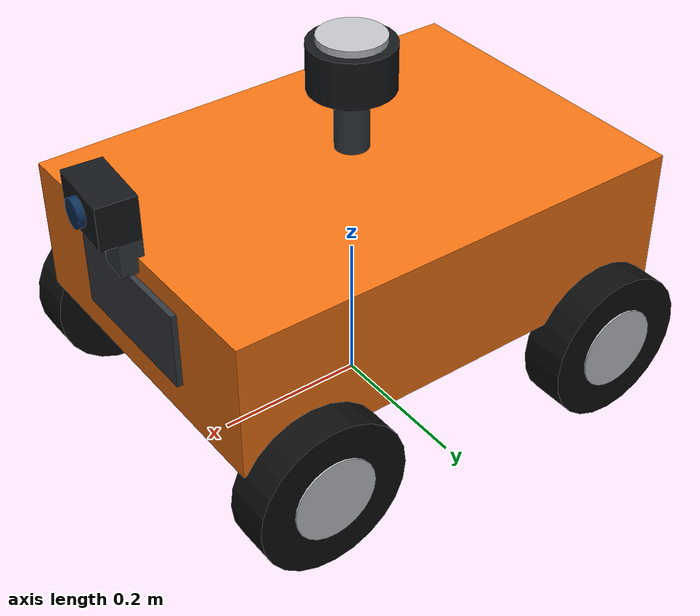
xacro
<?xml version="1.0"?>
<robot name="guardrail_bot" xmlns:xacro="http://www.ros.org/wiki/xacro">

  <xacro:arg name="camera_pitch" default="0.0"/>
  <xacro:arg name="camera_yaw" default="-0.08"/>

  <xacro:include filename="common.xacro"/>
  <xacro:include filename="chassis.xacro"/>
  <xacro:include filename="wheels.xacro"/>
  <xacro:include filename="sensors.xacro"/>
  <xacro:include filename="gazebo.xacro"/>

</robot>

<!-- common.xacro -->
<robot xmlns:xacro="http://www.ros.org/wiki/xacro">

  <!-- ============================================================
       Geometric and dynamic parameters (SI units: m, kg, s, rad)
       ============================================================ -->
  <xacro:property name="wheel_radius"     value="0.10"/>
  <xacro:property name="wheel_width"      value="0.06"/>
  <xacro:property name="wheel_mass"       value="0.70"/>

  <!-- Wheel centres relative to base_link -->
  <xacro:property name="wheel_x"          value="0.22"/>
  <xacro:property name="wheel_y"          value="0.235"/>
  <xacro:property name="wheel_z"          value="-0.14"/>

  <!-- Track width used by the diff-drive plugin (left/right wheel centres) -->
  <xacro:property name="wheel_separation" value="${2.0 * wheel_y}"/>

  <!-- Chassis -->
  <xacro:property name="chassis_length"   value="0.62"/>
  <xacro:property name="chassis_width"    value="0.44"/>
  <xacro:property name="chassis_height"   value="0.18"/>
  <xacro:property name="chassis_mass"     value="8.0"/>
  <xacro:property name="base_link_z"      value="0.24"/>

  <!-- Sensor mounting (relative to base_link) -->
  <xacro:property name="camera_x"         value="0.335"/>
  <xacro:property name="camera_y"         value="0.0"/>
  <xacro:property name="camera_z"         value="0.16"/>

  <xacro:property name="lidar_x"          value="0.0"/>
  <xacro:property name="lidar_y"          value="0.0"/>
  <xacro:property name="lidar_z"          value="0.22"/>

  <xacro:macro name="box_inertial" params="mass x y z">
    <inertial>
      <origin xyz="0 0 0" rpy="0 0 0"/>
      <mass value="${mass}"/>
      <inertia
        ixx="${mass * (y*y + z*z) / 12.0}" ixy="0.0" ixz="0.0"
        iyy="${mass * (x*x + z*z) / 12.0}" iyz="0.0"
        izz="${mass * (x*x + y*y) / 12.0}"/>
    </inertial>
  </xacro:macro>

  <xacro:macro name="cylinder_inertial" params="mass radius length">
    <inertial>
      <origin xyz="0 0 0" rpy="0 0 0"/>
      <mass value="${mass}"/>
      <inertia
        ixx="${mass * (3.0*radius*radius + length*length) / 12.0}" ixy="0.0" ixz="0.0"
        iyy="${mass * (3.0*radius*radius + length*length) / 12.0}" iyz="0.0"
        izz="${mass * radius * radius / 2.0}"/>
    </inertial>
  </xacro:macro>

</robot>

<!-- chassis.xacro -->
<robot xmlns:xacro="http://www.ros.org/wiki/xacro">

  <!-- base_footprint is the ground-projection frame used by odometry.
       It is massless; Gazebo will lump the fixed joint into base_link. -->
  <link name="base_footprint"/>

  <joint name="base_joint" type="fixed">
    <parent link="base_footprint"/>
    <child link="base_link"/>
    <origin xyz="0 0 ${base_link_z}" rpy="0 0 0"/>
  </joint>

  <link name="base_link">
    <visual name="chassis_visual">
      <origin xyz="0 0 0" rpy="0 0 0"/>
      <geometry>
        <box size="${chassis_length} ${chassis_width} ${chassis_height}"/>
      </geometry>
      <material name="body_orange">
        <color rgba="0.95 0.45 0.08 1.0"/>
      </material>
    </visual>

    <!-- Lower skirt: makes the robot look like a road-inspection platform. -->
    <visual name="skirt_visual">
      <origin xyz="0 0 -0.09" rpy="0 0 0"/>
      <geometry>
        <box size="0.58 0.40 0.04"/>
      </geometry>
      <material name="body_dark">
        <color rgba="0.11 0.12 0.13 1.0"/>
      </material>
    </visual>

    <!-- Front camera housing and rear equipment box are only decorative. -->
    <visual name="front_panel_visual">
      <origin xyz="0.305 0 0.01" rpy="0 0 0"/>
      <geometry>
        <box size="0.025 0.20 0.10"/>
      </geometry>
      <material name="panel_grey">
        <color rgba="0.20 0.22 0.24 1.0"/>
      </material>
    </visual>

    <collision name="chassis_collision">
      <origin xyz="0 0 0" rpy="0 0 0"/>
      <geometry>
        <box size="${chassis_length} ${chassis_width} ${chassis_height}"/>
      </geometry>
    </collision>

    <xacro:box_inertial mass="${chassis_mass}"
                        x="${chassis_length}"
                        y="${chassis_width}"
                        z="${chassis_height}"/>
  </link>

  <!-- A fixed frame at the front face, convenient for future sensors. -->
  <link name="front_frame"/>
  <joint name="front_frame_joint" type="fixed">
    <parent link="base_link"/>
    <child link="front_frame"/>
    <origin xyz="0.31 0 0.02" rpy="0 0 0"/>
  </joint>

</robot>

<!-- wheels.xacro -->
<robot xmlns:xacro="http://www.ros.org/wiki/xacro">

  <!-- A wheel is a cylinder whose axis is the URDF y axis.
       The cylinder primitive is defined about z, hence rpy="${pi/2} 0 0". -->
  <xacro:macro name="wheel" params="name x y">
    <link name="${name}_wheel_link">
      <visual name="${name}_tyre_visual">
        <origin xyz="0 0 0" rpy="${pi/2} 0 0"/>
        <geometry>
          <cylinder radius="${wheel_radius}" length="${wheel_width}"/>
        </geometry>
        <material name="tyre_black">
          <color rgba="0.05 0.05 0.05 1.0"/>
        </material>
      </visual>

      <!-- A light-coloured rim makes wheel rotation visible in Gazebo. -->
      <visual name="${name}_rim_visual">
        <origin xyz="0 0 0" rpy="${pi/2} 0 0"/>
        <geometry>
          <cylinder radius="${0.055}" length="${wheel_width + 0.004}"/>
        </geometry>
        <material name="rim_silver">
          <color rgba="0.75 0.76 0.78 1.0"/>
        </material>
      </visual>

      <collision name="${name}_tyre_collision">
        <origin xyz="0 0 0" rpy="${pi/2} 0 0"/>
        <geometry>
          <cylinder radius="${wheel_radius}" length="${wheel_width}"/>
        </geometry>
      </collision>

      <xacro:cylinder_inertial mass="${wheel_mass}"
                               radius="${wheel_radius}"
                               length="${wheel_width}"/>
    </link>

    <joint name="${name}_wheel_joint" type="continuous">
      <parent link="base_link"/>
      <child link="${name}_wheel_link"/>
      <origin xyz="${x} ${y} ${wheel_z}" rpy="0 0 0"/>
      <axis xyz="0 1 0"/>
      <limit effort="20.0" velocity="30.0"/>
      <dynamics damping="0.05" friction="0.0"/>
    </joint>

    <!-- High friction is needed for skid-steer / four-wheel differential drive.
         The values are Gazebo URDF extensions and are converted to SDF surface
         parameters when the robot is spawned. -->
    <gazebo reference="${name}_wheel_link">
      <mu1>1.2</mu1>
      <mu2>1.2</mu2>
      <kp>1000000.0</kp>
      <kd>100.0</kd>
    </gazebo>
  </xacro:macro>

  <xacro:wheel name="front_left"  x="${wheel_x}"  y="${wheel_y}"/>
  <xacro:wheel name="rear_left"   x="${-wheel_x}" y="${wheel_y}"/>
  <xacro:wheel name="front_right" x="${wheel_x}"  y="${-wheel_y}"/>
  <xacro:wheel name="rear_right"  x="${-wheel_x}" y="${-wheel_y}"/>

</robot>

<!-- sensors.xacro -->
<robot xmlns:xacro="http://www.ros.org/wiki/xacro">

  <!-- ==================== Camera ==================== -->
  <link name="camera_link">
    <visual name="camera_body_visual">
      <origin xyz="0 0 0" rpy="0 0 0"/>
      <geometry>
        <box size="0.050 0.090 0.055"/>
      </geometry>
      <material name="sensor_dark">
        <color rgba="0.08 0.09 0.10 1.0"/>
      </material>
    </visual>

    <visual name="camera_lens_visual">
      <origin xyz="0.028 0 0" rpy="0 1.5708 0"/>
      <geometry>
        <cylinder radius="0.018" length="0.012"/>
      </geometry>
      <material name="lens_blue">
        <color rgba="0.05 0.18 0.35 1.0"/>
      </material>
    </visual>

    <!-- Small bracket down to the chassis front face. -->
    <visual name="camera_bracket_visual">
      <origin xyz="-0.020 0 -0.045" rpy="0 0 0"/>
      <geometry>
        <box size="0.030 0.040 0.090"/>
      </geometry>
      <material name="panel_grey">
        <color rgba="0.20 0.22 0.24 1.0"/>
      </material>
    </visual>

    <collision name="camera_collision">
      <origin xyz="0 0 0" rpy="0 0 0"/>
      <geometry>
        <box size="0.050 0.090 0.055"/>
      </geometry>
    </collision>

    <xacro:box_inertial mass="0.15" x="0.050" y="0.090" z="0.055"/>
  </link>

  <joint name="camera_joint" type="fixed">
    <parent link="base_link"/>
    <child link="camera_link"/>
    <origin xyz="${camera_x} ${camera_y} ${camera_z}"
            rpy="0 $(arg camera_pitch) $(arg camera_yaw)"/>
  </joint>

  <!-- ==================== IMU ==================== -->
  <link name="imu_link">
    <visual name="imu_visual">
      <origin xyz="0 0 0" rpy="0 0 0"/>
      <geometry><box size="0.035 0.035 0.012"/></geometry>
      <material name="imu_dark">
        <color rgba="0.06 0.07 0.08 1.0"/>
      </material>
    </visual>
    <xacro:box_inertial mass="0.02" x="0.035" y="0.035" z="0.012"/>
  </link>

  <joint name="imu_joint" type="fixed">
    <parent link="base_link"/>
    <child link="imu_link"/>
    <origin xyz="0 0 0" rpy="0 0 0"/>
  </joint>

  <link name="camera_optical_link"/>
  <joint name="camera_optical_joint" type="fixed">
    <parent link="camera_link"/>
    <child link="camera_optical_link"/>
    <origin xyz="0 0 0" rpy="-1.5707963 0 -1.5707963"/>
  </joint>

  <!-- ==================== 3D LiDAR ==================== -->
  <link name="lidar_link">
    <!-- Mounting mast -->
    <visual name="lidar_mast_visual">
      <origin xyz="0 0 -0.055" rpy="0 0 0"/>
      <geometry>
        <cylinder radius="0.022" length="0.110"/>
      </geometry>
      <material name="panel_grey">
        <color rgba="0.20 0.22 0.24 1.0"/>
      </material>
    </visual>

    <visual name="lidar_body_visual">
      <origin xyz="0 0 0" rpy="0 0 0"/>
      <geometry>
        <cylinder radius="0.055" length="0.060"/>
      </geometry>
      <material name="sensor_dark">
        <color rgba="0.08 0.09 0.10 1.0"/>
      </material>
    </visual>

    <visual name="lidar_cap_visual">
      <origin xyz="0 0 0.034" rpy="0 0 0"/>
      <geometry>
        <cylinder radius="0.043" length="0.010"/>
      </geometry>
      <material name="rim_silver">
        <color rgba="0.75 0.76 0.78 1.0"/>
      </material>
    </visual>

    <collision name="lidar_collision">
      <origin xyz="0 0 0" rpy="0 0 0"/>
      <geometry>
        <cylinder radius="0.055" length="0.060"/>
      </geometry>
    </collision>

    <xacro:cylinder_inertial mass="0.25" radius="0.055" length="0.060"/>
  </link>

  <joint name="lidar_joint" type="fixed">
    <parent link="base_link"/>
    <child link="lidar_link"/>
    <origin xyz="${lidar_x} ${lidar_y} ${lidar_z}" rpy="0 0 0"/>
  </joint>

  <gazebo reference="camera_link">
    <sensor name="front_camera" type="camera">
      <always_on>true</always_on>
      <update_rate>10</update_rate>
      <visualize>true</visualize>
      <topic>camera/image_raw</topic>
      <ignition_frame_id>camera_link</ignition_frame_id>
      <!-- Place the optical centre slightly in front of the decorative lens.
           Otherwise the lens/body can clip into the camera's near plane and
           fill the whole image with its own housing. -->
      <pose>0.06 0 0 0 0 0</pose>
      <camera>
        <horizontal_fov>1.396263</horizontal_fov>
        <image>
          <width>640</width>
          <height>480</height>
          <format>R8G8B8</format>
        </image>
        <clip>
          <near>0.05</near>
          <far>100.0</far>
        </clip>
      </camera>
    </sensor>
  </gazebo>

  <gazebo reference="imu_link">
    <sensor name="imu_sensor" type="imu">
      <always_on>true</always_on>
      <update_rate>100</update_rate>
      <visualize>false</visualize>
      <topic>imu</topic>
      <ignition_frame_id>imu_link</ignition_frame_id>
    </sensor>
  </gazebo>

  <gazebo reference="lidar_link">
    <sensor name="lidar3d" type="gpu_lidar">
      <always_on>true</always_on>
      <update_rate>10</update_rate>
      <visualize>true</visualize>
      <topic>scan</topic>
      <ignition_frame_id>lidar_link</ignition_frame_id>
      <ray>
        <scan>
          <horizontal>
            <samples>720</samples>
            <resolution>1</resolution>
            <min_angle>-3.14159265</min_angle>
            <max_angle>3.14159265</max_angle>
          </horizontal>
          <vertical>
            <samples>16</samples>
            <resolution>1</resolution>
            <min_angle>-0.261799</min_angle>
            <max_angle>0.261799</max_angle>
          </vertical>
        </scan>
        <range>
          <min>0.15</min>
          <max>30.0</max>
          <resolution>0.01</resolution>
        </range>
      </ray>
    </sensor>
  </gazebo>

</robot>
